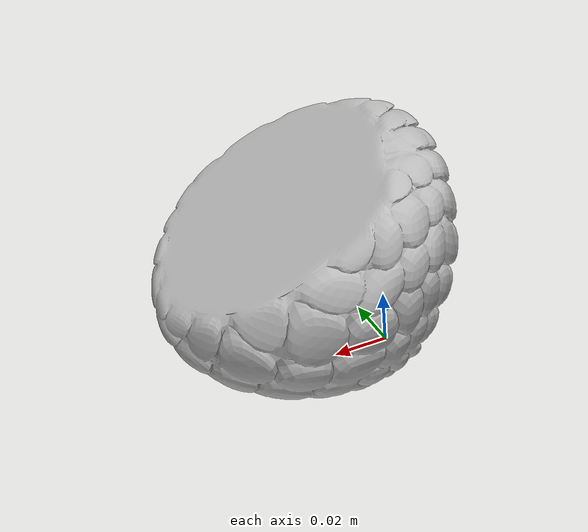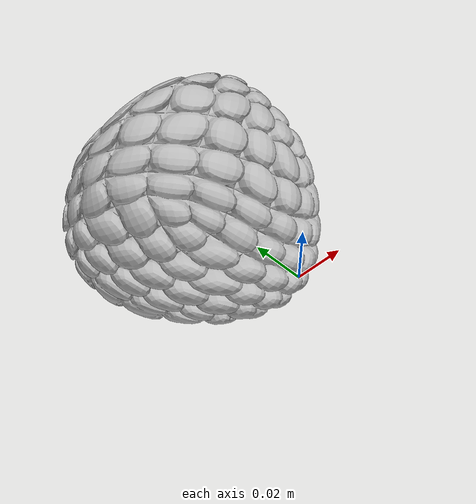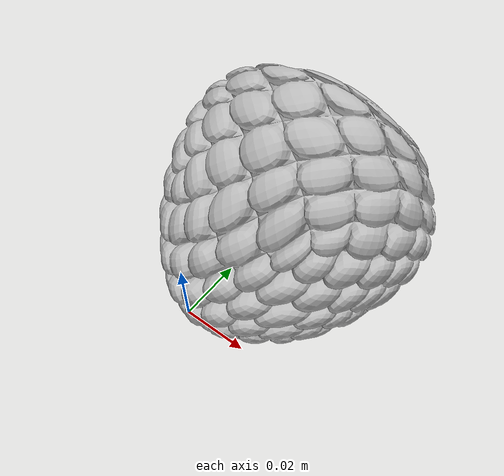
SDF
<?xml version="1.0"?>

<sdf version="1.6">
  <model name='good_fruit'>
    <static>true</static>
    <link name="body">
      <pose>0 0 0 0 0 0</pose>

        <visual name="visual">
          <geometry>
            <mesh><uri>model://good_fruit/meshes/good_fruit.obj</uri></mesh>
          </geometry>
        </visual>

        <collision name="collision">
          <geometry>
            <mesh><uri>model://good_fruit/meshes/good_fruit.obj</uri></mesh>
          </geometry>
        </collision>

    </link>
  </model>
</sdf>
